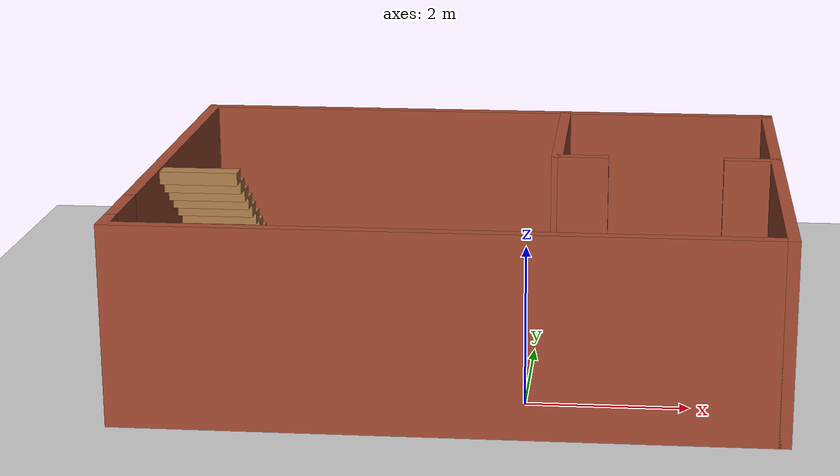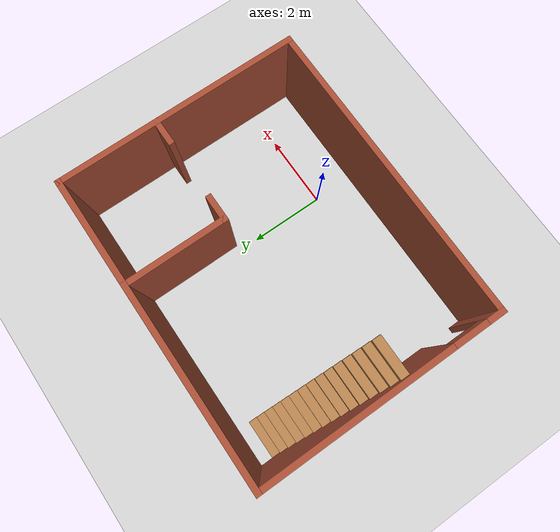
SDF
<sdf version='1.4'>
  <world name='default'>
    <!-- A global light source -->
    <include>
      <uri>model://sun</uri>
    </include>

    <!-- A ground plane -->
    <include>
      <uri>model://ground_plane</uri>
    </include>

    <physics type="ode">
      <real_time_update_rate>1000.0</real_time_update_rate>
      <max_step_size>0.001</max_step_size>
      <real_time_factor>1</real_time_factor>
      <ode>
        <solver>
          <type>quick</type>
          <iters>150</iters>
          <precon_iters>0</precon_iters>
          <sor>1.400000</sor>
          <use_dynamic_moi_rescaling>1</use_dynamic_moi_rescaling>
        </solver>
        <constraints>
          <cfm>0.00001</cfm>
          <erp>0.2</erp>
          <contact_max_correcting_vel>2000.000000</contact_max_correcting_vel>
          <contact_surface_layer>0.01000</contact_surface_layer>
        </constraints>
      </ode>
    </physics>

    <!-- A turtlebot symbol -->
    <include>
      <uri>model://turtlebot_small_room</uri>
      <uri>model://Objects_to_identify</uri>
    </include>

    <scene>
      <ambient>0.4 0.4 0.4 1</ambient>
      <background>0.7 0.7 0.7 1</background>
      <shadows>true</shadows>
    </scene>

    <gui fullscreen='0'>
      <camera name='user_camera'>
        <pose>0.0 0.0 17.0 0 1.5708 0</pose>
        <view_controller>orbit</view_controller>
      </camera>
    </gui>
  </world>
</sdf>

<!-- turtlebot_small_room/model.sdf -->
<sdf version='1.7'>
  <model name='turtlebot_small_room'>
    <pose>-0.885 2.015 0 0 -0 0</pose>
    <link name='Stairs_1'>
      <visual name='Stairs_1_Visual_0'>
        <pose>-3.37676 2.64923 0.083333 0 -0 0</pose>
        <geometry>
          <box>
            <size>1 0.233333 0.166667</size>
          </box>
        </geometry>
        <material>
          <script>
            <uri>file://media/materials/scripts/gazebo.material</uri>
            <name>Gazebo/Wood</name>
          </script>
          <ambient>1 1 1 1</ambient>
        </material>
        <meta>
          <layer>0</layer>
        </meta>
      </visual>
      <collision name='Stairs_1_Collision_0'>
        <geometry>
          <box>
            <size>1 0.233333 0.166667</size>
          </box>
        </geometry>
        <pose>-3.37676 2.64923 0.083333 0 -0 0</pose>
      </collision>
      <visual name='Stairs_1_Visual_1'>
        <pose>-3.37676 2.4159 0.25 0 -0 0</pose>
        <geometry>
          <box>
            <size>1 0.233333 0.166667</size>
          </box>
        </geometry>
        <material>
          <script>
            <uri>file://media/materials/scripts/gazebo.material</uri>
            <name>Gazebo/Wood</name>
          </script>
          <ambient>1 1 1 1</ambient>
        </material>
        <meta>
          <layer>0</layer>
        </meta>
      </visual>
      <collision name='Stairs_1_Collision_1'>
        <geometry>
          <box>
            <size>1 0.233333 0.166667</size>
          </box>
        </geometry>
        <pose>-3.37676 2.4159 0.25 0 -0 0</pose>
      </collision>
      <visual name='Stairs_1_Visual_2'>
        <pose>-3.37676 2.18256 0.416667 0 -0 0</pose>
        <geometry>
          <box>
            <size>1 0.233333 0.166667</size>
          </box>
        </geometry>
        <material>
          <script>
            <uri>file://media/materials/scripts/gazebo.material</uri>
            <name>Gazebo/Wood</name>
          </script>
          <ambient>1 1 1 1</ambient>
        </material>
        <meta>
          <layer>0</layer>
        </meta>
      </visual>
      <collision name='Stairs_1_Collision_2'>
        <geometry>
          <box>
            <size>1 0.233333 0.166667</size>
          </box>
        </geometry>
        <pose>-3.37676 2.18256 0.416667 0 -0 0</pose>
      </collision>
      <visual name='Stairs_1_Visual_3'>
        <pose>-3.37676 1.94923 0.583333 0 -0 0</pose>
        <geometry>
          <box>
            <size>1 0.233333 0.166667</size>
          </box>
        </geometry>
        <material>
          <script>
            <uri>file://media/materials/scripts/gazebo.material</uri>
            <name>Gazebo/Wood</name>
          </script>
          <ambient>1 1 1 1</ambient>
        </material>
        <meta>
          <layer>0</layer>
        </meta>
      </visual>
      <collision name='Stairs_1_Collision_3'>
        <geometry>
          <box>
            <size>1 0.233333 0.166667</size>
          </box>
        </geometry>
        <pose>-3.37676 1.94923 0.583333 0 -0 0</pose>
      </collision>
      <visual name='Stairs_1_Visual_4'>
        <pose>-3.37676 1.7159 0.75 0 -0 0</pose>
        <geometry>
          <box>
            <size>1 0.233333 0.166667</size>
          </box>
        </geometry>
        <material>
          <script>
            <uri>file://media/materials/scripts/gazebo.material</uri>
            <name>Gazebo/Wood</name>
          </script>
          <ambient>1 1 1 1</ambient>
        </material>
        <meta>
          <layer>0</layer>
        </meta>
      </visual>
      <collision name='Stairs_1_Collision_4'>
        <geometry>
          <box>
            <size>1 0.233333 0.166667</size>
          </box>
        </geometry>
        <pose>-3.37676 1.7159 0.75 0 -0 0</pose>
      </collision>
      <visual name='Stairs_1_Visual_5'>
        <pose>-3.37676 1.48256 0.916667 0 -0 0</pose>
        <geometry>
          <box>
            <size>1 0.233333 0.166667</size>
          </box>
        </geometry>
        <material>
          <script>
            <uri>file://media/materials/scripts/gazebo.material</uri>
            <name>Gazebo/Wood</name>
          </script>
          <ambient>1 1 1 1</ambient>
        </material>
        <meta>
          <layer>0</layer>
        </meta>
      </visual>
      <collision name='Stairs_1_Collision_5'>
        <geometry>
          <box>
            <size>1 0.233333 0.166667</size>
          </box>
        </geometry>
        <pose>-3.37676 1.48256 0.916667 0 -0 0</pose>
      </collision>
      <visual name='Stairs_1_Visual_6'>
        <pose>-3.37676 1.24923 1.08333 0 -0 0</pose>
        <geometry>
          <box>
            <size>1 0.233333 0.166667</size>
          </box>
        </geometry>
        <material>
          <script>
            <uri>file://media/materials/scripts/gazebo.material</uri>
            <name>Gazebo/Wood</name>
          </script>
          <ambient>1 1 1 1</ambient>
        </material>
        <meta>
          <layer>0</layer>
        </meta>
      </visual>
      <collision name='Stairs_1_Collision_6'>
        <geometry>
          <box>
            <size>1 0.233333 0.166667</size>
          </box>
        </geometry>
        <pose>-3.37676 1.24923 1.08333 0 -0 0</pose>
      </collision>
      <visual name='Stairs_1_Visual_7'>
        <pose>-3.37676 1.0159 1.25 0 -0 0</pose>
        <geometry>
          <box>
            <size>1 0.233333 0.166667</size>
          </box>
        </geometry>
        <material>
          <script>
            <uri>file://media/materials/scripts/gazebo.material</uri>
            <name>Gazebo/Wood</name>
          </script>
          <ambient>1 1 1 1</ambient>
        </material>
        <meta>
          <layer>0</layer>
        </meta>
      </visual>
      <collision name='Stairs_1_Collision_7'>
        <geometry>
          <box>
            <size>1 0.233333 0.166667</size>
          </box>
        </geometry>
        <pose>-3.37676 1.0159 1.25 0 -0 0</pose>
      </collision>
      <visual name='Stairs_1_Visual_8'>
        <pose>-3.37676 0.782565 1.41667 0 -0 0</pose>
        <geometry>
          <box>
            <size>1 0.233333 0.166667</size>
          </box>
        </geometry>
        <material>
          <script>
            <uri>file://media/materials/scripts/gazebo.material</uri>
            <name>Gazebo/Wood</name>
          </script>
          <ambient>1 1 1 1</ambient>
        </material>
        <meta>
          <layer>0</layer>
        </meta>
      </visual>
      <collision name='Stairs_1_Collision_8'>
        <geometry>
          <box>
            <size>1 0.233333 0.166667</size>
          </box>
        </geometry>
        <pose>-3.37676 0.782565 1.41667 0 -0 0</pose>
      </collision>
      <visual name='Stairs_1_Visual_9'>
        <pose>-3.37676 0.549231 1.58333 0 -0 0</pose>
        <geometry>
          <box>
            <size>1 0.233333 0.166667</size>
          </box>
        </geometry>
        <material>
          <script>
            <uri>file://media/materials/scripts/gazebo.material</uri>
            <name>Gazebo/Wood</name>
          </script>
          <ambient>1 1 1 1</ambient>
        </material>
        <meta>
          <layer>0</layer>
        </meta>
      </visual>
      <collision name='Stairs_1_Collision_9'>
        <geometry>
          <box>
            <size>1 0.233333 0.166667</size>
          </box>
        </geometry>
        <pose>-3.37676 0.549231 1.58333 0 -0 0</pose>
      </collision>
      <visual name='Stairs_1_Visual_10'>
        <pose>-3.37676 0.315898 1.75 0 -0 0</pose>
        <geometry>
          <box>
            <size>1 0.233333 0.166667</size>
          </box>
        </geometry>
        <material>
          <script>
            <uri>file://media/materials/scripts/gazebo.material</uri>
            <name>Gazebo/Wood</name>
          </script>
          <ambient>1 1 1 1</ambient>
        </material>
        <meta>
          <layer>0</layer>
        </meta>
      </visual>
      <collision name='Stairs_1_Collision_10'>
        <geometry>
          <box>
            <size>1 0.233333 0.166667</size>
          </box>
        </geometry>
        <pose>-3.37676 0.315898 1.75 0 -0 0</pose>
      </collision>
      <visual name='Stairs_1_Visual_11'>
        <pose>-3.37676 0.082565 1.91667 0 -0 0</pose>
        <geometry>
          <box>
            <size>1 0.233333 0.166667</size>
          </box>
        </geometry>
        <material>
          <script>
            <uri>file://media/materials/scripts/gazebo.material</uri>
            <name>Gazebo/Wood</name>
          </script>
          <ambient>1 1 1 1</ambient>
        </material>
        <meta>
          <layer>0</layer>
        </meta>
      </visual>
      <collision name='Stairs_1_Collision_11'>
        <geometry>
          <box>
            <size>1 0.233333 0.166667</size>
          </box>
        </geometry>
        <pose>-3.37676 0.082565 1.91667 0 -0 0</pose>
      </collision>
      <visual name='Stairs_1_Visual_12'>
        <pose>-3.37676 -0.150769 2.08333 0 -0 0</pose>
        <geometry>
          <box>
            <size>1 0.233333 0.166667</size>
          </box>
        </geometry>
        <material>
          <script>
            <uri>file://media/materials/scripts/gazebo.material</uri>
            <name>Gazebo/Wood</name>
          </script>
          <ambient>1 1 1 1</ambient>
        </material>
        <meta>
          <layer>0</layer>
        </meta>
      </visual>
      <collision name='Stairs_1_Collision_12'>
        <geometry>
          <box>
            <size>1 0.233333 0.166667</size>
          </box>
        </geometry>
        <pose>-3.37676 -0.150769 2.08333 0 -0 0</pose>
      </collision>
      <visual name='Stairs_1_Visual_13'>
        <pose>-3.37676 -0.384102 2.25 0 -0 0</pose>
        <geometry>
          <box>
            <size>1 0.233333 0.166667</size>
          </box>
        </geometry>
        <material>
          <script>
            <uri>file://media/materials/scripts/gazebo.material</uri>
            <name>Gazebo/Wood</name>
          </script>
          <ambient>1 1 1 1</ambient>
        </material>
        <meta>
          <layer>0</layer>
        </meta>
      </visual>
      <collision name='Stairs_1_Collision_13'>
        <geometry>
          <box>
            <size>1 0.233333 0.166667</size>
          </box>
        </geometry>
        <pose>-3.37676 -0.384102 2.25 0 -0 0</pose>
      </collision>
      <visual name='Stairs_1_Visual_14'>
        <pose>-3.37676 -0.617435 2.41667 0 -0 0</pose>
        <geometry>
          <box>
            <size>1 0.233333 0.166667</size>
          </box>
        </geometry>
        <material>
          <script>
            <uri>file://media/materials/scripts/gazebo.material</uri>
            <name>Gazebo/Wood</name>
          </script>
          <ambient>1 1 1 1</ambient>
        </material>
        <meta>
          <layer>0</layer>
        </meta>
      </visual>
      <collision name='Stairs_1_Collision_14'>
        <geometry>
          <box>
            <size>1 0.233333 0.166667</size>
          </box>
        </geometry>
        <pose>-3.37676 -0.617435 2.41667 0 -0 0</pose>
      </collision>
    </link>
    <link name='Wall_11'>
      <pose>-3.975 0 0 0 -0 1.5708</pose>
      <visual name='Wall_11_Visual_0'>
        <pose>-3.01489 0 1.25 0 -0 0</pose>
        <geometry>
          <box>
            <size>0.470211 0.15 2.5</size>
          </box>
        </geometry>
        <material>
          <script>
            <uri>file://media/materials/scripts/gazebo.material</uri>
            <name>Gazebo/Bricks</name>
          </script>
          <ambient>1 1 1 1</ambient>
        </material>
        <meta>
          <layer>0</layer>
        </meta>
      </visual>
      <collision name='Wall_11_Collision_0'>
        <geometry>
          <box>
            <size>0.470211 0.15 2.5</size>
          </box>
        </geometry>
        <pose>-3.01489 0 1.25 0 -0 0</pose>
      </collision>
      <visual name='Wall_11_Visual_1'>
        <pose>0.685106 0 1.25 0 -0 0</pose>
        <geometry>
          <box>
            <size>5.12979 0.15 2.5</size>
          </box>
        </geometry>
        <material>
          <script>
            <uri>file://media/materials/scripts/gazebo.material</uri>
            <name>Gazebo/Bricks</name>
          </script>
          <ambient>1 1 1 1</ambient>
        </material>
        <meta>
          <layer>0</layer>
        </meta>
      </visual>
      <collision name='Wall_11_Collision_1'>
        <geometry>
          <box>
            <size>5.12979 0.15 2.5</size>
          </box>
        </geometry>
        <pose>0.685106 0 1.25 0 -0 0</pose>
      </collision>
      <visual name='Wall_11_Visual_2'>
        <pose>-2.32979 0 2.25 0 -0 0</pose>
        <geometry>
          <box>
            <size>0.9 0.15 0.5</size>
          </box>
        </geometry>
        <material>
          <script>
            <uri>file://media/materials/scripts/gazebo.material</uri>
            <name>Gazebo/Bricks</name>
          </script>
          <ambient>1 1 1 1</ambient>
        </material>
        <meta>
          <layer>0</layer>
        </meta>
      </visual>
      <collision name='Wall_11_Collision_2'>
        <geometry>
          <box>
            <size>0.9 0.15 0.5</size>
          </box>
        </geometry>
        <pose>-2.32979 0 2.25 0 -0 0</pose>
      </collision>
    </link>
    <link name='Wall_19'>
      <collision name='Wall_19_Collision'>
        <geometry>
          <box>
            <size>5.25 0.15 2.5</size>
          </box>
        </geometry>
        <pose>0 0 1.25 0 -0 0</pose>
      </collision>
      <visual name='Wall_19_Visual'>
        <pose>0 0 1.25 0 -0 0</pose>
        <geometry>
          <box>
            <size>5.25 0.15 2.5</size>
          </box>
        </geometry>
        <material>
          <script>
            <uri>file://media/materials/scripts/gazebo.material</uri>
            <name>Gazebo/Bricks</name>
          </script>
          <ambient>1 1 1 1</ambient>
        </material>
        <meta>
          <layer>0</layer>
        </meta>
      </visual>
      <pose>-1.425 3.175 0 0 -0 0</pose>
    </link>
    <link name='Wall_25'>
      <collision name='Wall_25_Collision'>
        <geometry>
          <box>
            <size>3 0.15 2.5</size>
          </box>
        </geometry>
        <pose>0 0 1.25 0 -0 0</pose>
      </collision>
      <visual name='Wall_25_Visual'>
        <pose>0 0 1.25 0 -0 0</pose>
        <geometry>
          <box>
            <size>3 0.15 2.5</size>
          </box>
        </geometry>
        <material>
          <script>
            <uri>file://media/materials/scripts/gazebo.material</uri>
            <name>Gazebo/Bricks</name>
          </script>
          <ambient>1 1 1 1</ambient>
        </material>
        <meta>
          <layer>0</layer>
        </meta>
      </visual>
      <pose>2.55 3.175 0 0 -0 3.14159</pose>
    </link>
    <link name='Wall_33'>
      <collision name='Wall_33_Collision'>
        <geometry>
          <box>
            <size>2.75 0.15 2.5</size>
          </box>
        </geometry>
        <pose>0 0 1.25 0 -0 0</pose>
      </collision>
      <visual name='Wall_33_Visual'>
        <pose>0 0 1.25 0 -0 0</pose>
        <geometry>
          <box>
            <size>2.75 0.15 2.5</size>
          </box>
        </geometry>
        <material>
          <script>
            <uri>file://media/materials/scripts/gazebo.material</uri>
            <name>Gazebo/Bricks</name>
          </script>
          <ambient>1 1 1 1</ambient>
        </material>
        <meta>
          <layer>0</layer>
        </meta>
      </visual>
      <pose>1.125 1.875 0 0 -0 -1.5708</pose>
    </link>
    <link name='Wall_34'>
      <collision name='Wall_34_Collision'>
        <geometry>
          <box>
            <size>0.75 0.15 2.5</size>
          </box>
        </geometry>
        <pose>0 0 1.25 0 -0 0</pose>
      </collision>
      <visual name='Wall_34_Visual'>
        <pose>0 0 1.25 0 -0 0</pose>
        <geometry>
          <box>
            <size>0.75 0.15 2.5</size>
          </box>
        </geometry>
        <material>
          <script>
            <uri>file://media/materials/scripts/gazebo.material</uri>
            <name>Gazebo/Bricks</name>
          </script>
          <ambient>1 1 1 1</ambient>
        </material>
        <meta>
          <layer>0</layer>
        </meta>
      </visual>
      <pose>1.425 0.575 0 0 -0 0</pose>
    </link>
    <link name='Wall_36'>
      <collision name='Wall_36_Collision'>
        <geometry>
          <box>
            <size>0.75 0.15 2.5</size>
          </box>
        </geometry>
        <pose>0 0 1.25 0 -0 0</pose>
      </collision>
      <visual name='Wall_36_Visual'>
        <pose>0 0 1.25 0 -0 0</pose>
        <geometry>
          <box>
            <size>0.75 0.15 2.5</size>
          </box>
        </geometry>
        <material>
          <script>
            <uri>file://media/materials/scripts/gazebo.material</uri>
            <name>Gazebo/Bricks</name>
          </script>
          <ambient>1 1 1 1</ambient>
        </material>
        <meta>
          <layer>0</layer>
        </meta>
      </visual>
      <pose>3.675 0.575 0 0 -0 3.14159</pose>
    </link>
    <link name='Wall_40'>
      <collision name='Wall_40_Collision'>
        <geometry>
          <box>
            <size>8 0.15 2.5</size>
          </box>
        </geometry>
        <pose>0 0 1.25 0 -0 0</pose>
      </collision>
      <visual name='Wall_40_Visual'>
        <pose>0 0 1.25 0 -0 0</pose>
        <geometry>
          <box>
            <size>8 0.15 2.5</size>
          </box>
        </geometry>
        <material>
          <script>
            <uri>file://media/materials/scripts/gazebo.material</uri>
            <name>Gazebo/Bricks</name>
          </script>
          <ambient>1 1 1 1</ambient>
        </material>
        <meta>
          <layer>0</layer>
        </meta>
      </visual>
      <pose>-0.05 -3.175 0 0 -0 0</pose>
    </link>
    <link name='Wall_42'>
      <collision name='Wall_42_Collision'>
        <geometry>
          <box>
            <size>6.5 0.15 2.5</size>
          </box>
        </geometry>
        <pose>0 0 1.25 0 -0 0</pose>
      </collision>
      <visual name='Wall_42_Visual'>
        <pose>0 0 1.25 0 -0 0</pose>
        <geometry>
          <box>
            <size>6.5 0.15 2.5</size>
          </box>
        </geometry>
        <material>
          <script>
            <uri>file://media/materials/scripts/gazebo.material</uri>
            <name>Gazebo/Bricks</name>
          </script>
          <ambient>1 1 1 1</ambient>
        </material>
        <meta>
          <layer>0</layer>
        </meta>
      </visual>
      <pose>3.975 0 0 0 -0 -1.5708</pose>
    </link>
    <static>1</static>
  </model>

</sdf>
